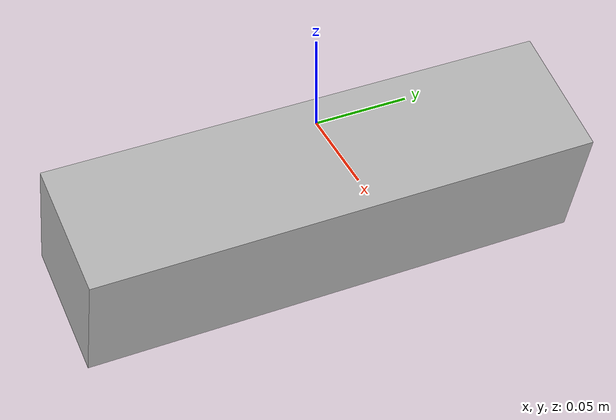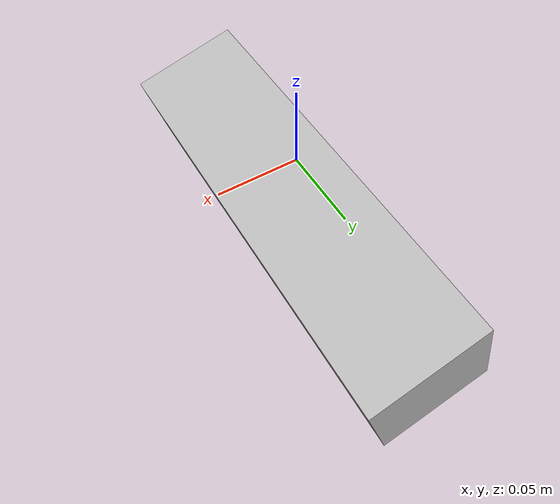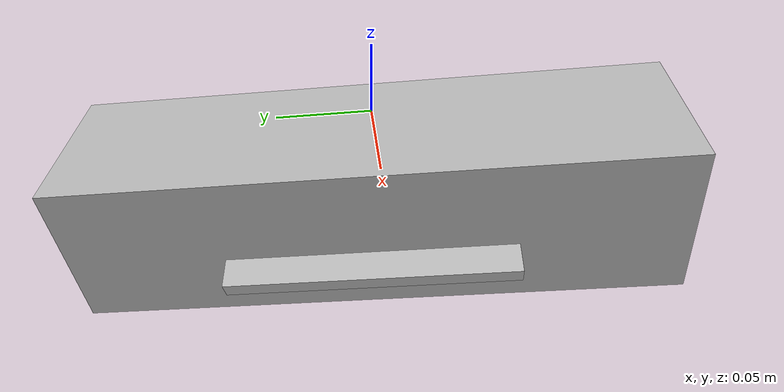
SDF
<?xml version="1.0"?>
<sdf version="1.4">

<model name="floating_sensor">
  <plugin name="floating_sensor_position_plugin" filename="libfloating_sensor_position_plugin.so">
    <namespace>floating_sensor</namespace>
  </plugin>

<pose>0 0 0 0 0 0</pose>
<static>true</static>

<link name='rgb_link'>
<gravity>false</gravity>
    <pose frame=''>0 0 0 0 0 0</pose>
    <collision name='base_link_fixed_joint_lump__cam_link_collision_1'>
      <pose frame=''>0 0 -0.05 0 0.261799 0</pose>
      <geometry>
        <box>
           <size>0.073000 0.276000 0.072000</size>
        </box>
      </geometry>
    </collision>

    <visual name='base_link_fixed_joint_lump__cam_link_visual_1'>
      <pose frame=''>0 0 -0.05 0 0.261799 0</pose>
      <geometry>
      <box>
         <size>0.073000 0.276000 0.072000</size>
      </box>
      </geometry>
    </visual>
    <sensor name='floating_sensor_camera' type='depth'>
      <update_rate>20</update_rate>
      <camera name='__default__'>
       <horizontal_fov>1.74533</horizontal_fov><!--100 degree 1.74533 --> <!-- 110 1.91988 degrees -->
        <image>
          <format>R8G8B8</format>
          <width>640</width>
          <height>480</height>
        </image>
        <clip>
          <near>0.05</near>
          <far>9</far>
        </clip>
      </camera>
      <plugin name='floating_sensor_camera_controller' filename='libgazebo_ros_openni_kinect.so'>
      <robotNamespace>floating_sensor</robotNamespace>
      <cameraName>camera</cameraName>
      <alwaysOn>true</alwaysOn>
      <updateRate>30</updateRate>
      <imageTopicName>rgb/image_raw</imageTopicName>
      <depthImageTopicName>depth/image_raw</depthImageTopicName>
      <pointCloudTopicName>depth/points</pointCloudTopicName>
      <cameraInfoTopicName>rgb/camera_info</cameraInfoTopicName>
      <depthImageCameraInfoTopicName>depth/camera_info</depthImageCameraInfoTopicName>
      <frameName>camera_depth_optical_frame</frameName>
      <distortionK1>0.00000001</distortionK1>
      <distortionK2>0.00000001</distortionK2>
      <distortionK3>0.00000001</distortionK3>
      <distortionT1>0.00000001</distortionT1>
      <distortionT2>0.00000001</distortionT2>
      <pointCloudCutoff>0.05</pointCloudCutoff>
      <pointcloudcutoffmax>9.0</pointcloudcutoffmax>
      </plugin>
      <pose frame=''>0 0.049 -0.05 0 0.261799 0</pose>
    </sensor>
  </link>

<link name='thermal_link'>
<gravity>false</gravity>
    <pose frame=''>0 0 0 0 -0 0</pose>
    <collision name='base_link_fixed_joint_lump__cam_thermal_link_collision_1'>
      <pose frame=''>0 0 -0.09 0 0.0 0</pose>
      <geometry>
        <box>
            <size>0.0078 0.130 0.0192</size>
        </box>
      </geometry>
    </collision>

    <visual name='base_link_fixed_joint_lump__cam_thermal_link_visual_1'>
      <pose frame=''>0 0 -0.09 0 0.0 0</pose>
      <geometry>
      <box>
          <size>0.0078 0.130 0.0192</size>
      </box>
      </geometry>
    </visual>
    <sensor name='thermal_cam_camera_sensor' type='camera'>
      <update_rate>20</update_rate>
      <camera name='__default__'>
         <horizontal_fov>1.047197</horizontal_fov> <!-- 60 degrees -->
        <image>
          <format>R8G8B8</format>
          <width>160</width>
          <height>120</height>
        </image>
        <clip>
          <near>0.01</near>
          <far>100</far>
        </clip>
      </camera>
      <plugin name='thermal_camera_controller' filename='libgazebo_ros_thermal_camera_color.so'>
      <robotNamespace>floating_sensor</robotNamespace>
      <cameraName>thermal_cam</cameraName>
        <alwaysOn>true</alwaysOn>
        <updateRate>10</updateRate>
        <imageTopicName>thermal/image_raw</imageTopicName>
        <cameraInfoTopicName>thermal/camera_info</cameraInfoTopicName>
        <frameName>thermal_cam_optical_frame</frameName>
      </plugin>
      <pose frame=''>0 0 -0.09 0 0 0</pose>
    </sensor>
  </link>

</model>
</sdf>
